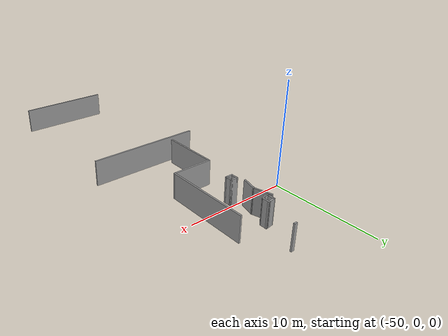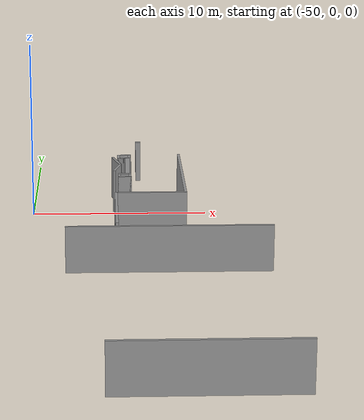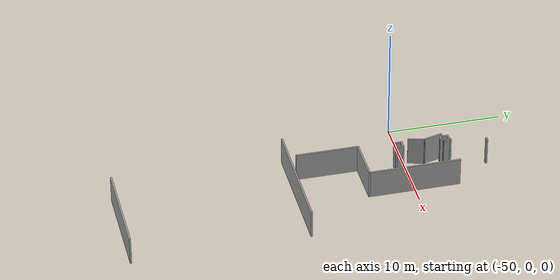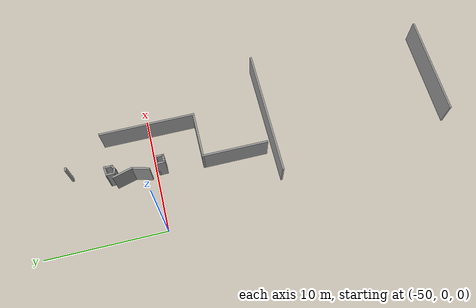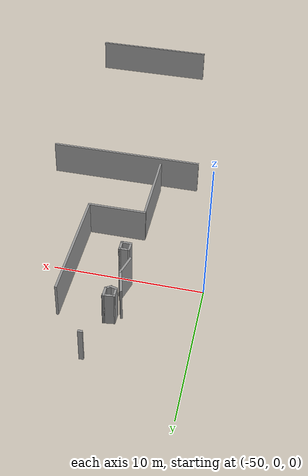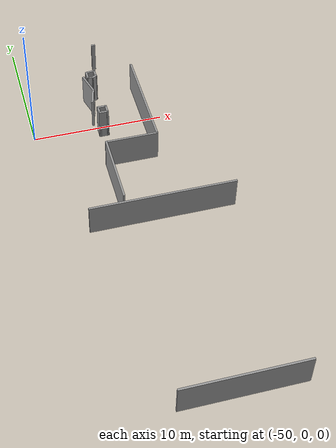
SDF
<sdf version="1.7">
 <model name="TD_v2">
  <pose>-6.31602 -6.69767 0 0 -0 0</pose>
  <link name="Wall_121">
   <collision name="Wall_121_Collision">
    <geometry><box><size>8 0.15 2.5</size></box></geometry>
    <pose>0 0 1.25 0 -0 0</pose>
   </collision>
   <visual name="Wall_121_Visual">
    <pose>0 0 1.25 0 -0 0</pose>
    <geometry><box><size>8 0.15 2.5</size></box></geometry>
    <material>
     <script><uri>file://media/materials/scripts/gazebo.material</uri><name>Gazebo/Grey</name></script>
     <ambient>1 1 1 1</ambient>
    </material>
    <meta><layer>0</layer></meta>
   </visual>
   <pose>-35.0573 6.62178 0 0 -0 -1.5708</pose>
  </link>
  <link name="Wall_122">
   <collision name="Wall_122_Collision">
    <geometry><box><size>4 0.15 2.5</size></box></geometry>
    <pose>0 0 1.25 0 -0 0</pose>
   </collision>
   <visual name="Wall_122_Visual">
    <pose>0 0 1.25 0 -0 0</pose>
    <geometry><box><size>4 0.15 2.5</size></box></geometry>
    <material>
     <script><uri>file://media/materials/scripts/gazebo.material</uri><name>Gazebo/Grey</name></script>
     <ambient>1 1 1 1</ambient>
    </material>
    <meta><layer>0</layer></meta>
   </visual>
   <pose>-36.9823 2.69678 0 0 -0 3.14159</pose>
  </link>
  <link name="Wall_123">
   <collision name="Wall_123_Collision">
    <geometry><box><size>5.5 0.15 2.5</size></box></geometry>
    <pose>0 0 1.25 0 -0 0</pose>
   </collision>
   <visual name="Wall_123_Visual">
    <pose>0 0 1.25 0 -0 0</pose>
    <geometry><box><size>5.5 0.15 2.5</size></box></geometry>
    <material>
     <script><uri>file://media/materials/scripts/gazebo.material</uri><name>Gazebo/Grey</name></script>
     <ambient>1 1 1 1</ambient>
    </material>
    <meta><layer>0</layer></meta>
   </visual>
   <pose>-38.9073 0.02178 0 0 -0 -1.5708</pose>
  </link>
  <link name="Wall_159">
   <collision name="Wall_159_Collision">
    <geometry><box><size>1.75 0.15 2.5</size></box></geometry>
    <pose>0 0 1.25 0 -0 0</pose>
   </collision>
   <visual name="Wall_159_Visual">
    <pose>0 0 1.25 0 -0 0</pose>
    <geometry><box><size>1.75 0.15 2.5</size></box></geometry>
    <material>
     <script><uri>file://media/materials/scripts/gazebo.material</uri><name>Gazebo/Grey</name></script>
     <ambient>1 1 1 1</ambient>
    </material>
    <meta><layer>0</layer></meta>
   </visual>
   <pose>-38.8075 9.22192 0 0 -0 -1.309</pose>
  </link>
  <link name="Wall_162">
   <collision name="Wall_162_Collision">
    <geometry><box><size>1.5 0.15 2.5</size></box></geometry>
    <pose>0 0 1.25 0 -0 0</pose>
   </collision>
   <visual name="Wall_162_Visual">
    <pose>0 0 1.25 0 -0 0</pose>
    <geometry><box><size>1.5 0.15 2.5</size></box></geometry>
    <material>
     <script><uri>file://media/materials/scripts/gazebo.material</uri><name>Gazebo/Grey</name></script>
     <ambient>1 1 1 1</ambient>
    </material>
    <meta><layer>0</layer></meta>
   </visual>
   <pose>-38.7751 7.79718 0 0 -0 -1.8326</pose>
  </link>
  <link name="Wall_2">
   <collision name="Wall_2_Collision">
    <geometry><box><size>10.75 0.15 2.5</size></box></geometry>
    <pose>0 0 1.25 0 -0 0</pose>
   </collision>
   <visual name="Wall_2_Visual">
    <pose>0 0 1.25 0 -0 0</pose>
    <geometry><box><size>10.75 0.15 2.5</size></box></geometry>
    <material>
     <script><uri>file://media/materials/scripts/gazebo.material</uri><name>Gazebo/Grey</name></script>
     <ambient>1 1 1 1</ambient>
    </material>
    <meta><layer>0</layer></meta>
   </visual>
   <pose>-36.2022 -3.30891 0 0 -0 0</pose>
  </link>
  <link name="Wall_254">
   <collision name="Wall_254_Collision">
    <geometry><box><size>0.75 0.15 2.5</size></box></geometry>
    <pose>0 0 1.25 0 -0 0</pose>
   </collision>
   <visual name="Wall_254_Visual">
    <pose>0 0 1.25 0 -0 0</pose>
    <geometry><box><size>0.75 0.15 2.5</size></box></geometry>
    <material>
     <script><uri>file://media/materials/scripts/gazebo.material</uri><name>Gazebo/Grey</name></script>
     <ambient>1 1 1 1</ambient>
    </material>
    <meta><layer>0</layer></meta>
   </visual>
   <pose>-38.6877 10.1974 0 0 -0 -1.5708</pose>
  </link>
  <link name="Wall_258">
   <collision name="Wall_258_Collision">
    <geometry><box><size>0.5 0.15 2.5</size></box></geometry>
    <pose>0 0 1.25 0 -0 0</pose>
   </collision>
   <visual name="Wall_258_Visual">
    <pose>0 0 1.25 0 -0 0</pose>
    <geometry><box><size>0.5 0.15 2.5</size></box></geometry>
    <material>
     <script><uri>file://media/materials/scripts/gazebo.material</uri><name>Gazebo/Grey</name></script>
     <ambient>1 1 1 1</ambient>
    </material>
    <meta><layer>0</layer></meta>
   </visual>
   <pose>-38.5186 9.85208 0 0 -0 -0.261799</pose>
  </link>
  <link name="Wall_259">
   <collision name="Wall_259_Collision">
    <geometry><box><size>0.5 0.15 2.5</size></box></geometry>
    <pose>0 0 1.25 0 -0 0</pose>
   </collision>
   <visual name="Wall_259_Visual">
    <pose>0 0 1.25 0 -0 0</pose>
    <geometry><box><size>0.5 0.15 2.5</size></box></geometry>
    <material>
     <script><uri>file://media/materials/scripts/gazebo.material</uri><name>Gazebo/Grey</name></script>
     <ambient>1 1 1 1</ambient>
    </material>
    <meta><layer>0</layer></meta>
   </visual>
   <pose>-38.1981 9.89428 0 0 -0 0.523599</pose>
  </link>
  <link name="Wall_264">
   <collision name="Wall_264_Collision">
    <geometry><box><size>0.75 0.15 2.5</size></box></geometry>
    <pose>0 0 1.25 0 -0 0</pose>
   </collision>
   <visual name="Wall_264_Visual">
    <pose>0 0 1.25 0 -0 0</pose>
    <geometry><box><size>0.75 0.15 2.5</size></box></geometry>
    <material>
     <script><uri>file://media/materials/scripts/gazebo.material</uri><name>Gazebo/Grey</name></script>
     <ambient>1 1 1 1</ambient>
    </material>
    <meta><layer>0</layer></meta>
   </visual>
   <pose>-38.0465 10.2818 0 0 -0 1.5708</pose>
  </link>
  <link name="Wall_266">
   <collision name="Wall_266_Collision">
    <geometry><box><size>0.796716 0.15 2.5</size></box></geometry>
    <pose>0 0 1.25 0 -0 0</pose>
   </collision>
   <visual name="Wall_266_Visual">
    <pose>0 0 1.25 0 -0 0</pose>
    <geometry><box><size>0.796716 0.15 2.5</size></box></geometry>
    <material>
     <script><uri>file://media/materials/scripts/gazebo.material</uri><name>Gazebo/Grey</name></script>
     <ambient>1 1 1 1</ambient>
    </material>
    <meta><layer>0</layer></meta>
   </visual>
   <pose>-38.3671 10.5396 0 0 -0 0.1309</pose>
  </link>
  <link name="Wall_267">
   <collision name="Wall_267_Collision">
    <geometry><box><size>0.16 0.15 2.5</size></box></geometry>
    <pose>0 0 1.25 0 -0 0</pose>
   </collision>
   <visual name="Wall_267_Visual">
    <pose>0 0 1.25 0 -0 0</pose>
    <geometry><box><size>0.16 0.15 2.5</size></box></geometry>
    <material>
     <script><uri>file://media/materials/scripts/gazebo.material</uri><name>Gazebo/Grey</name></script>
     <ambient>1 1 1 1</ambient>
    </material>
    <meta><layer>0</layer></meta>
   </visual>
   <pose>-38.0415 10.5818 0 0 -0 0</pose>
  </link>
  <link name="Wall_268">
   <collision name="Wall_268_Collision">
    <geometry><box><size>0.16 0.15 2.5</size></box></geometry>
    <pose>0 0 1.25 0 -0 0</pose>
   </collision>
   <visual name="Wall_268_Visual">
    <pose>0 0 1.25 0 -0 0</pose>
    <geometry><box><size>0.16 0.15 2.5</size></box></geometry>
    <material>
     <script><uri>file://media/materials/scripts/gazebo.material</uri><name>Gazebo/Grey</name></script>
     <ambient>1 1 1 1</ambient>
    </material>
    <meta><layer>0</layer></meta>
   </visual>
   <pose>-38.0315 10.5818 0 0 -0 0</pose>
  </link>
  <link name="Wall_271">
   <collision name="Wall_271_Collision">
    <geometry><box><size>0.75 0.15 2.5</size></box></geometry>
    <pose>0 0 1.25 0 -0 0</pose>
   </collision>
   <visual name="Wall_271_Visual">
    <pose>0 0 1.25 0 -0 0</pose>
    <geometry><box><size>0.75 0.15 2.5</size></box></geometry>
    <material>
     <script><uri>file://media/materials/scripts/gazebo.material</uri><name>Gazebo/Grey</name></script>
     <ambient>1 1 1 1</ambient>
    </material>
    <meta><layer>0</layer></meta>
   </visual>
   <pose>-38.3804 6.43621 0 0 -0 0</pose>
  </link>
  <link name="Wall_272">
   <collision name="Wall_272_Collision">
    <geometry><box><size>0.75 0.15 2.5</size></box></geometry>
    <pose>0 0 1.25 0 -0 0</pose>
   </collision>
   <visual name="Wall_272_Visual">
    <pose>0 0 1.25 0 -0 0</pose>
    <geometry><box><size>0.75 0.15 2.5</size></box></geometry>
    <material>
     <script><uri>file://media/materials/scripts/gazebo.material</uri><name>Gazebo/Grey</name></script>
     <ambient>1 1 1 1</ambient>
    </material>
    <meta><layer>0</layer></meta>
   </visual>
   <pose>-38.0804 6.13621 0 0 -0 -1.5708</pose>
  </link>
  <link name="Wall_274">
   <collision name="Wall_274_Collision">
    <geometry><box><size>0.75 0.15 2.5</size></box></geometry>
    <pose>0 0 1.25 0 -0 0</pose>
   </collision>
   <visual name="Wall_274_Visual">
    <pose>0 0 1.25 0 -0 0</pose>
    <geometry><box><size>0.75 0.15 2.5</size></box></geometry>
    <material>
     <script><uri>file://media/materials/scripts/gazebo.material</uri><name>Gazebo/Grey</name></script>
     <ambient>1 1 1 1</ambient>
    </material>
    <meta><layer>0</layer></meta>
   </visual>
   <pose>-38.6804 6.13621 0 0 -0 -1.5708</pose>
  </link>
  <link name="Wall_275">
   <collision name="Wall_275_Collision">
    <geometry><box><size>0.75 0.15 2.5</size></box></geometry>
    <pose>0 0 1.25 0 -0 0</pose>
   </collision>
   <visual name="Wall_275_Visual">
    <pose>0 0 1.25 0 -0 0</pose>
    <geometry><box><size>0.75 0.15 2.5</size></box></geometry>
    <material>
     <script><uri>file://media/materials/scripts/gazebo.material</uri><name>Gazebo/Grey</name></script>
     <ambient>1 1 1 1</ambient>
    </material>
    <meta><layer>0</layer></meta>
   </visual>
   <pose>-38.3804 5.83621 0 0 -0 0</pose>
  </link>
  <link name="Wall_276">
   <collision name="Wall_276_Collision">
    <geometry><box><size>0.16 0.15 2.5</size></box></geometry>
    <pose>0 0 1.25 0 -0 0</pose>
   </collision>
   <visual name="Wall_276_Visual">
    <pose>0 0 1.25 0 -0 0</pose>
    <geometry><box><size>0.16 0.15 2.5</size></box></geometry>
    <material>
     <script><uri>file://media/materials/scripts/gazebo.material</uri><name>Gazebo/Grey</name></script>
     <ambient>1 1 1 1</ambient>
    </material>
    <meta><layer>0</layer></meta>
   </visual>
   <pose>-38.0754 5.83621 0 0 -0 0</pose>
  </link>
  <link name="Wall_277">
   <collision name="Wall_277_Collision">
    <geometry><box><size>0.16 0.15 2.5</size></box></geometry>
    <pose>0 0 1.25 0 -0 0</pose>
   </collision>
   <visual name="Wall_277_Visual">
    <pose>0 0 1.25 0 -0 0</pose>
    <geometry><box><size>0.16 0.15 2.5</size></box></geometry>
    <material>
     <script><uri>file://media/materials/scripts/gazebo.material</uri><name>Gazebo/Grey</name></script>
     <ambient>1 1 1 1</ambient>
    </material>
    <meta><layer>0</layer></meta>
   </visual>
   <pose>-38.0754 5.83621 0 0 -0 3.14159</pose>
  </link>
  <link name="Wall_4">
   <collision name="Wall_4_Collision">
    <geometry><box><size>8.72482 0.15 2.5</size></box></geometry>
    <pose>0 0 1.25 0 -0 0</pose>
   </collision>
   <visual name="Wall_4_Visual">
    <pose>0 0 1.25 0 -0 0</pose>
    <geometry><box><size>8.72482 0.15 2.5</size></box></geometry>
    <material>
     <script><uri>file://media/materials/scripts/gazebo.material</uri><name>Gazebo/Grey</name></script>
     <ambient>1 1 1 1</ambient>
    </material>
    <meta><layer>0</layer></meta>
   </visual>
   <pose>-35.2095 -18.3977 0 0 -0 -3.14154</pose>
  </link>
  <link name="Wall_71">
   <collision name="Wall_71_Collision">
    <geometry><box><size>0.3 0.15 2.5</size></box></geometry>
    <pose>0 0 1.25 0 -0 0</pose>
   </collision>
   <visual name="Wall_71_Visual">
    <pose>0 0 1.25 0 -0 0</pose>
    <geometry><box><size>0.3 0.15 2.5</size></box></geometry>
    <material>
     <script><uri>file://media/materials/scripts/gazebo.material</uri><name>Gazebo/Grey</name></script>
     <ambient>1 1 1 1</ambient>
    </material>
    <meta><layer>0</layer></meta>
   </visual>
   <pose>-37.4416 13.6218 0 0 -0 3.14159</pose>
  </link>
  <static>1</static>
 </model>
</sdf>
